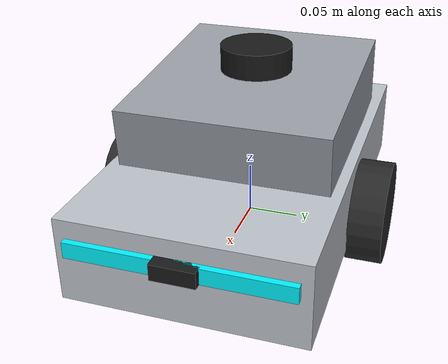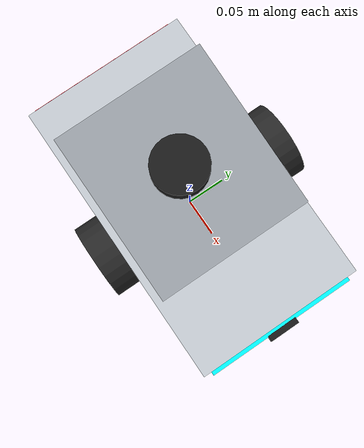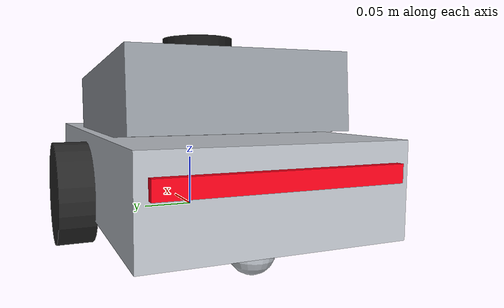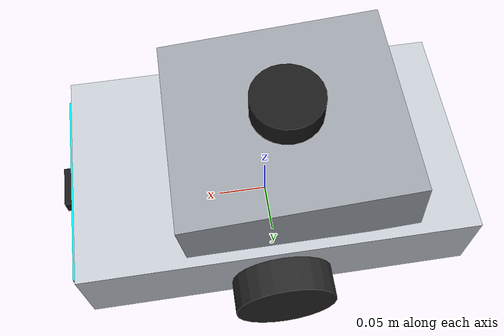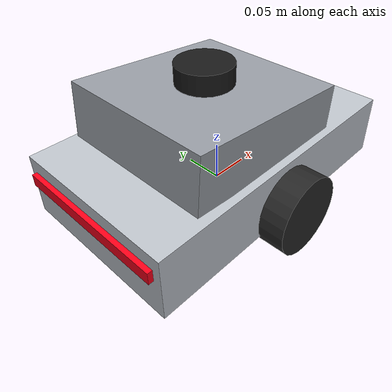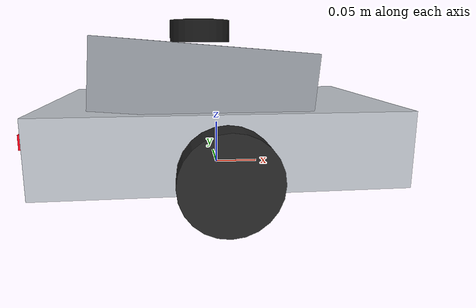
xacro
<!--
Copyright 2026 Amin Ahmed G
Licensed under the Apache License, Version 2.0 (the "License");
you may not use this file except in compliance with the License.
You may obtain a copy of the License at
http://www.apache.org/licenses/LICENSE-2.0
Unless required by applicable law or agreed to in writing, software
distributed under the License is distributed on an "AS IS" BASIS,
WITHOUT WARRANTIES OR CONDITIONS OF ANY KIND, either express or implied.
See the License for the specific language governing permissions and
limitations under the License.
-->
<?xml version="1.0"?>
<robot name="ros2_obstacle_avoidance_bot" xmlns:xacro="http://www.ros.org/wiki/xacro">

  <xacro:include filename="inertia_macros.xacro"/>
  <xacro:include filename="cybertruck_chassis.xacro"/>
  <xacro:include filename="wheel_macro.xacro"/>
  <xacro:include filename="lidar.xacro"/>
  <xacro:include filename="camera.xacro"/>

  <!-- Assemble Cybertruck Obstacle Avoidance Bot -->
  <xacro:cybertruck_body/>

  <xacro:drive_wheel name="left" reflect="1"/>
  <xacro:drive_wheel name="right" reflect="-1"/>

  <xacro:caster_wheel name="front" reflect="1"/>
  <xacro:caster_wheel name="rear" reflect="-1"/>

  <!-- Gazebo Sim Differential Drive Controller Plugin -->
  <gazebo>
    <plugin filename="gz-sim-diff-drive-system" name="gz::sim::systems::DiffDrive">
      <left_joint>left_wheel_joint</left_joint>
      <right_joint>right_wheel_joint</right_joint>
      <wheel_separation>0.25</wheel_separation>
      <wheel_radius>0.05</wheel_radius>
      <max_linear_acceleration>1.5</max_linear_acceleration>
      <min_linear_acceleration>-1.5</min_linear_acceleration>
      <max_angular_acceleration>3.0</max_angular_acceleration>
      <min_angular_acceleration>-3.0</min_angular_acceleration>
      <max_torque>20.0</max_torque>
      <topic>/cmd_vel</topic>
      <odom_topic>/odom</odom_topic>
      <tf_topic>/tf</tf_topic>
      <frame_id>odom</frame_id>
      <child_frame_id>base_link</child_frame_id>
      <odom_publisher_frequency>30</odom_publisher_frequency>
    </plugin>
  </gazebo>

</robot>

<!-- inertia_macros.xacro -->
<robot xmlns:xacro="http://www.ros.org/wiki/xacro">

  <xacro:macro name="inertial_sphere" params="mass radius *origin">
    <inertial>
      <xacro:insert_block name="origin"/>
      <mass value="${mass}"/>
      <inertia ixx="${(2/5) * mass * (radius*radius)}" ixy="0.0" ixz="0.0"
               iyy="${(2/5) * mass * (radius*radius)}" iyz="0.0"
               izz="${(2/5) * mass * (radius*radius)}"/>
    </inertial>
  </xacro:macro>

  <xacro:macro name="inertial_box" params="mass x y z *origin">
    <inertial>
      <xacro:insert_block name="origin"/>
      <mass value="${mass}"/>
      <inertia ixx="${(1/12) * mass * (y*y + z*z)}" ixy="0.0" ixz="0.0"
               iyy="${(1/12) * mass * (x*x + z*z)}" iyz="0.0"
               izz="${(1/12) * mass * (x*x + y*y)}"/>
    </inertial>
  </xacro:macro>

  <xacro:macro name="inertial_cylinder" params="mass length radius *origin">
    <inertial>
      <xacro:insert_block name="origin"/>
      <mass value="${mass}"/>
      <inertia ixx="${(1/12) * mass * (3*radius*radius + length*length)}" ixy="0.0" ixz="0.0"
               iyy="${(1/12) * mass * (3*radius*radius + length*length)}" iyz="0.0"
               izz="${(1/2) * mass * (radius*radius)}"/>
    </inertial>
  </xacro:macro>

</robot>

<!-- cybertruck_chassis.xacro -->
<robot xmlns:xacro="http://www.ros.org/wiki/xacro">

  <!-- Cybertruck Main Chassis Assembly -->
  <xacro:macro name="cybertruck_body">

    <!-- Lower Stainless Steel Main Body -->
    <link name="base_link">
      <visual>
        <origin xyz="0 0 0.04" rpy="0 0 0"/>
        <geometry>
          <box size="0.38 0.22 0.08"/>
        </geometry>
        <material name="stainless_steel">
          <color rgba="0.75 0.77 0.80 1.0"/>
        </material>
      </visual>
      <collision>
        <origin xyz="0 0 0.04" rpy="0 0 0"/>
        <geometry>
          <box size="0.38 0.22 0.08"/>
        </geometry>
      </collision>
      <xacro:inertial_box mass="1.2" x="0.38" y="0.22" z="0.08">
        <origin xyz="0 0 0.04" rpy="0 0 0"/>
      </xacro:inertial_box>
    </link>

    <gazebo reference="base_link">
      <visual>
        <material>
          <ambient>0.75 0.77 0.80 1.0</ambient>
          <diffuse>0.75 0.77 0.80 1.0</diffuse>
          <specular>0.9 0.9 0.9 1.0</specular>
        </material>
      </visual>
    </gazebo>

    <!-- Angular Roof Vault (Tesla Cybertruck Cabin) -->
    <link name="roof_vault_link">
      <visual>
        <origin xyz="0 0 0" rpy="0 0.08 0"/>
        <geometry>
          <box size="0.22 0.20 0.07"/>
        </geometry>
        <material name="stainless_steel_dark">
          <color rgba="0.60 0.62 0.65 1.0"/>
        </material>
      </visual>
      <collision>
        <origin xyz="0 0 0" rpy="0 0.08 0"/>
        <geometry>
          <box size="0.22 0.20 0.07"/>
        </geometry>
      </collision>
      <xacro:inertial_box mass="0.2" x="0.22" y="0.20" z="0.07">
        <origin xyz="0 0 0" rpy="0 0.08 0"/>
      </xacro:inertial_box>
    </link>

    <joint name="roof_vault_joint" type="fixed">
      <parent link="base_link"/>
      <child link="roof_vault_link"/>
      <origin xyz="-0.02 0 0.11" rpy="0 0 0"/>
    </joint>

    <gazebo reference="roof_vault_link">
      <visual>
        <material>
          <ambient>0.60 0.62 0.65 1.0</ambient>
          <diffuse>0.60 0.62 0.65 1.0</diffuse>
          <specular>0.8 0.8 0.8 1.0</specular>
        </material>
      </visual>
    </gazebo>

    <!-- Front LED Cyber Headlight Strip -->
    <link name="front_lightbar_link">
      <visual>
        <geometry>
          <box size="0.01 0.20 0.015"/>
        </geometry>
        <material name="cyber_cyan_led">
          <color rgba="0.0 0.95 1.0 1.0"/>
        </material>
      </visual>
    </link>

    <joint name="front_lightbar_joint" type="fixed">
      <parent link="base_link"/>
      <child link="front_lightbar_link"/>
      <origin xyz="0.191 0 0.055" rpy="0 0 0"/>
    </joint>

    <gazebo reference="front_lightbar_link">
      <visual>
        <material>
          <ambient>0.0 0.95 1.0 1.0</ambient>
          <diffuse>0.0 0.95 1.0 1.0</diffuse>
          <emissive>0.0 0.95 1.0 1.0</emissive>
        </material>
      </visual>
    </gazebo>

    <!-- Rear Red Cyber Taillight Strip -->
    <link name="rear_lightbar_link">
      <visual>
        <geometry>
          <box size="0.01 0.20 0.015"/>
        </geometry>
        <material name="cyber_red_led">
          <color rgba="1.0 0.0 0.1 1.0"/>
        </material>
      </visual>
    </link>

    <joint name="rear_lightbar_joint" type="fixed">
      <parent link="base_link"/>
      <child link="rear_lightbar_link"/>
      <origin xyz="-0.191 0 0.055" rpy="0 0 0"/>
    </joint>

    <gazebo reference="rear_lightbar_link">
      <visual>
        <material>
          <ambient>1.0 0.0 0.1 1.0</ambient>
          <diffuse>1.0 0.0 0.1 1.0</diffuse>
          <emissive>1.0 0.0 0.1 1.0</emissive>
        </material>
      </visual>
    </gazebo>

  </xacro:macro>

</robot>

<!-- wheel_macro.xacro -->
<robot xmlns:xacro="http://www.ros.org/wiki/xacro">

  <!-- Drive Wheel Macro -->
  <xacro:macro name="drive_wheel" params="name reflect">
    <link name="${name}_wheel">
      <visual>
        <origin xyz="0 0 0" rpy="1.5708 0 0"/>
        <geometry>
          <cylinder radius="0.05" length="0.035"/>
        </geometry>
        <material name="matte_black">
          <color rgba="0.15 0.15 0.15 1.0"/>
        </material>
      </visual>
      <collision>
        <origin xyz="0 0 0" rpy="1.5708 0 0"/>
        <geometry>
          <cylinder radius="0.05" length="0.035"/>
        </geometry>
      </collision>
      <xacro:inertial_cylinder mass="0.12" length="0.035" radius="0.05">
        <origin xyz="0 0 0" rpy="1.5708 0 0"/>
      </xacro:inertial_cylinder>
    </link>

    <joint name="${name}_wheel_joint" type="continuous">
      <parent link="base_link"/>
      <child link="${name}_wheel"/>
      <origin xyz="0 ${reflect * 0.125} 0.02" rpy="0 0 0"/>
      <axis xyz="0 1 0"/>
    </joint>

    <gazebo reference="${name}_wheel">
      <material>Gazebo/FlatBlack</material>
      <mu1>1.2</mu1>
      <mu2>1.2</mu2>
    </gazebo>
  </xacro:macro>

  <!-- Caster Wheel Macro -->
  <xacro:macro name="caster_wheel" params="name reflect">
    <link name="${name}_caster">
      <visual>
        <geometry>
          <sphere radius="0.02"/>
        </geometry>
        <material name="stainless_steel">
          <color rgba="0.75 0.77 0.80 1.0"/>
        </material>
      </visual>
      <collision>
        <geometry>
          <sphere radius="0.02"/>
        </geometry>
      </collision>
      <xacro:inertial_sphere mass="0.04" radius="0.02">
        <origin xyz="0 0 0" rpy="0 0 0"/>
      </xacro:inertial_sphere>
    </link>

    <joint name="${name}_caster_joint" type="fixed">
      <parent link="base_link"/>
      <child link="${name}_caster"/>
      <origin xyz="${reflect * 0.14} 0 -0.01" rpy="0 0 0"/>
    </joint>

    <gazebo reference="${name}_caster">
      <material>Gazebo/Grey</material>
      <mu1>0.001</mu1>
      <mu2>0.001</mu2>
    </gazebo>
  </xacro:macro>

</robot>

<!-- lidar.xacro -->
<robot xmlns:xacro="http://www.ros.org/wiki/xacro">

  <!-- 360 Degree LiDAR Sensor -->
  <link name="laser_frame">
    <visual>
      <geometry>
        <cylinder radius="0.035" length="0.025"/>
      </geometry>
      <material name="matte_black">
        <color rgba="0.1 0.1 0.1 1.0"/>
      </material>
    </visual>
    <collision>
      <geometry>
        <cylinder radius="0.035" length="0.025"/>
      </geometry>
    </collision>
    <xacro:inertial_cylinder mass="0.05" length="0.025" radius="0.035">
      <origin xyz="0 0 0" rpy="0 0 0"/>
    </xacro:inertial_cylinder>
  </link>

  <joint name="laser_joint" type="fixed">
    <parent link="roof_vault_link"/>
    <child link="laser_frame"/>
    <origin xyz="0.0 0 0.05" rpy="0 0 0"/>
  </joint>

  <!-- Gazebo Sim GPU LiDAR Plugin Integration -->
  <gazebo reference="laser_frame">
    <material>Gazebo/DarkGrey</material>
    <sensor name="gpu_lidar" type="gpu_lidar">
      <pose>0 0 0 0 0 0</pose>
      <topic>/scan</topic>
      <update_rate>10.0</update_rate>
      <ray>
        <scan>
          <horizontal>
            <samples>360</samples>
            <resolution>1.0</resolution>
            <min_angle>-3.14159</min_angle>
            <max_angle>3.14159</max_angle>
          </horizontal>
        </scan>
        <range>
          <min>0.12</min>
          <max>10.0</max>
          <resolution>0.01</resolution>
        </range>
        <noise>
          <type>gaussian</type>
          <mean>0.0</mean>
          <stddev>0.005</stddev>
        </noise>
      </ray>
      <always_on>true</always_on>
      <visualize>true</visualize>
    </sensor>
  </gazebo>

</robot>

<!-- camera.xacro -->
<robot xmlns:xacro="http://www.ros.org/wiki/xacro">

  <!-- Front Camera Link -->
  <link name="camera_link">
    <visual>
      <geometry>
        <box size="0.015 0.04 0.015"/>
      </geometry>
      <material name="matte_black">
        <color rgba="0.1 0.1 0.1 1.0"/>
      </material>
    </visual>
    <collision>
      <geometry>
        <box size="0.015 0.04 0.015"/>
      </geometry>
    </collision>
    <xacro:inertial_box mass="0.02" x="0.015" y="0.04" z="0.015">
      <origin xyz="0 0 0" rpy="0 0 0"/>
    </xacro:inertial_box>
  </link>

  <joint name="camera_joint" type="fixed">
    <parent link="base_link"/>
    <child link="camera_link"/>
    <origin xyz="0.195 0 0.055" rpy="0 0 0"/>
  </joint>

  <gazebo reference="camera_link">
    <material>Gazebo/Black</material>
    <sensor name="camera" type="camera">
      <pose>0 0 0 0 0 0</pose>
      <visualize>true</visualize>
      <update_rate>30.0</update_rate>
      <camera name="front_camera">
        <horizontal_fov>1.089</horizontal_fov>
        <image>
          <format>R8G8B8</format>
          <width>640</width>
          <height>480</height>
        </image>
        <clip>
          <near>0.05</near>
          <far>8.0</far>
        </clip>
      </camera>
      <topic>/camera/image_raw</topic>
    </sensor>
  </gazebo>

</robot>
